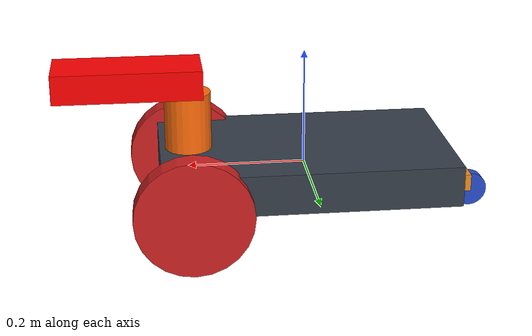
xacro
<?xml version="1.0"?>
<robot xmlns:xacro="http://www.ros.org/wiki/xacro" name="robot_xacro">
  <xacro:include filename="$(find exp_assignment2)/urdf/robot.gazebo"/>

  <xacro:property name="length_wheel" value="0.04" />
  <xacro:property name="radius_wheel" value="0.1" />

  <xacro:macro name="default_inertial" params="mass">
    <inertial>
      <mass value="${mass}" />
      <origin rpy="0 1.5707 1.5707" xyz="0 0 0"/>
      <inertia ixx="0.000526666666667" ixy="0" ixz="0" iyy="0.000526666666667" iyz="0" izz="0.001"/>
    </inertial>
  </xacro:macro>

  <xacro:macro name="cuboid_inertial" params="mass length width height">
    <inertial>
      <mass value="${mass}"/>
      <inertia ixx="${0.83*mass*(width+height)}" ixy="0.0" ixz="0.0" iyy="${0.83*mass*(length+height)}" iyz="0.0" izz="${0.83*mass*(width+length)}" />
    </inertial>
  </xacro:macro>

  <xacro:macro name="wheel_geometry">
    <geometry>
      <cylinder length="${length_wheel}" radius="${radius_wheel}"/>
    </geometry>
  </xacro:macro>

  <material name="black">
    <color rgba="0.0 0.0 0.0 1.0"/>
  </material>
  <material name="blue">
    <color rgba="0.203125 0.23828125 0.28515625 1.0"/>
  </material>
  <material name="green">
    <color rgba="0.0 0.8 0.0 1.0"/>
  </material>
  <material name="grey">
    <color rgba="0.2 0.2 0.2 1.0"/>
  </material>
  <material name="orange">
    <color rgba="1.0 0.423529411765 0.0392156862745 1.0"/>
  </material>
  <material name="brown">
    <color rgba="0.870588235294 0.811764705882 0.764705882353 1.0"/>
  </material>
  <material name="red">
    <color rgba="0.80078125 0.12890625 0.1328125 1.0"/>
  </material>
  <material name="white">
    <color rgba="1.0 1.0 1.0 1.0"/>
  </material>

  <link name="link_chassis">
    <!-- pose and inertial -->
    <pose>0 0 0.1 0 0 0</pose>
    <xacro:cuboid_inertial mass="10" length="0.5" width="0.3" height="0.07"/>
    <!-- body -->
    <collision name="collision_chassis">
      <geometry>
        <box size="0.5 0.3 0.07"/>
      </geometry>
    </collision>
    <visual>
      <origin rpy="0 0 0" xyz="0 0 0"/>
      <geometry>
        <box size="0.5 0.3 0.07"/>
      </geometry>
      <material name="blue"/>
    </visual>
  </link>

  <link name="link_right_wheel">
    <xacro:default_inertial mass="0.2"/>
    <collision name="link_right_wheel_collision">
      <origin rpy="0 1.5707 1.5707" xyz="0 0 0"/>
      <xacro:wheel_geometry />
    </collision>
    <visual name="link_right_wheel_visual">
      <origin rpy="0 1.5707 1.5707" xyz="0 0 0"/>
      <xacro:wheel_geometry />
      <material name="red"/>
    </visual>
  </link>

  <link name="link_left_wheel">
    <xacro:default_inertial mass="0.2"/>
    <collision name="link_left_wheel_collision">
      <origin rpy="0 1.5707 1.5707" xyz="0 0 0"/>
      <xacro:wheel_geometry />
    </collision>
    <visual name="link_left_wheel_visual">
      <origin rpy="0 1.5707 1.5707" xyz="0 0 0"/>
      <xacro:wheel_geometry />
      <material name="red"/>
    </visual>
  </link>

  <joint name="joint_right_wheel" type="continuous">
    <origin rpy="0 0 0" xyz="0.2 0.15 -0.03"/>
    <child link="link_right_wheel"/>
    <parent link="link_chassis"/>
    <axis rpy="0 0 0" xyz="0 1 0"/>
    <limit effort="10000" velocity="1000"/>
    <joint_properties damping="1.0" friction="1.0"/>
  </joint>

  <joint name="joint_left_wheel" type="continuous">
    <origin rpy="0 0 0" xyz="0.2 -0.15 -0.03"/>
    <child link="link_left_wheel"/>
    <parent link="link_chassis"/>
    <axis rpy="0 0 0" xyz="0 1 0"/>
    <limit effort="10000" velocity="1000"/>
    <joint_properties damping="1.0" friction="1.0"/>
  </joint>

  <link name="neck_link">
    <collision>
      <origin xyz="0 0 0.05" rpy="0 0 0"/>
      <geometry>
        <cylinder radius="0.04" length="0.1"/>
      </geometry>
    </collision>
    <visual>
      <origin xyz="0 0 0.05" rpy="0 0 0"/>
      <geometry>
        <cylinder radius="0.04" length="0.1"/>
      </geometry>
      <material name="orange"/>
    </visual>
    <inertial>
      <mass value="0.5" />
      <origin xyz="0 0 0" rpy="0 0 0"/>
      <inertia ixx="1e-6" ixy="0" ixz="0" iyy="1e-6" iyz="0" izz="1e-6" />
    </inertial>
  </link>

  <joint name="neck_joint" type="fixed">
    <axis xyz="0 1 0" />
    <origin xyz="0.2 0 0.035" rpy="0 0 0"/>
    <parent link="link_chassis"/>
    <child link="neck_link"/>
  </joint>

  <link name="camera_link">
    <collision>
      <origin xyz="0 0 0.025" rpy="0 0 0"/>
      <geometry>
        <box size="0.05 0.05 0.05"/>
      </geometry>
    </collision>
    <visual>
      <origin xyz="0.1 0 0.025" rpy="0 0 0"/>
      <geometry>
        <box size="0.25 0.1 0.05"/>
      </geometry>
      <material name="red">
        <color rgba="1 0 0 1"/>
      </material>
    </visual>
    <xacro:cuboid_inertial mass="0.3" length="0.25" width="0.1" height="0.05"/>
  </link>

  <joint name="camera_joint" type="revolute">
    <axis xyz="0 0 1" />
    <origin xyz="0 0 0.1" rpy="0 0 0"/>
    <parent link="neck_link"/>
    <child link="camera_link"/>
    <limit effort="10000" velocity="1000" lower="${-pi/4}" upper="${pi/4}"/>
    <joint_properties damping="1.0" friction="1.0"/>
  </joint>

  <transmission name="camera_joint_trans">
    <type>transmission_interface/SimpleTransmission</type>
    <joint name="camera_joint">
      <hardwareInterface>EffortJointInterface</hardwareInterface>
    </joint>
    <actuator name="motor1">
      <hardwareInterface>EffortJointInterface</hardwareInterface>
      <mechanicalInterface>1</mechanicalInterface>
    </actuator>
  </transmission>

  <link name="link_castor_axis">
    <!-- pose and inertial -->
    <pose>0 0 0.1 0 0 0</pose>
    <xacro:cuboid_inertial mass="0.2" length="0.05" width="0.035" height="0.03"/>
    <!-- body -->
    <collision name="collision_chassis">
      <origin rpy="0 0 0" xyz="-0.025 0 0"/>
      <geometry>
        <box size="0.05 0.035 0.03"/>
      </geometry>
    </collision>
    <visual>
      <origin rpy="0 0 0" xyz="-0.025 0 0"/>
      <geometry>
        <box size="0.05 0.035 0.03"/>
      </geometry>
    </visual>
  </link>

  <link name="link_castor_wheel">
    <xacro:default_inertial mass="0.2"/>
    <collision name="link_castor_wheel_collision">
      <origin rpy="0 1.5707 1.5707" xyz="0 0 0"/>
      <geometry>
        <cylinder length="0.02" radius="0.03"/>
      </geometry>
    </collision>
    <visual name="link_castor_wheel_visual">
      <origin rpy="0 1.5707 1.5707" xyz="0 0 0"/>
      <geometry>
        <cylinder length="0.02" radius="0.03"/>
      </geometry>
    </visual>
  </link>

  <joint name="joint_castor_wheel" type="continuous">
    <origin rpy="0 0 0" xyz="-0.05 0 -0.015"/>
    <child link="link_castor_wheel"/>
    <parent link="link_castor_axis"/>
    <axis rpy="0 0 0" xyz="0 1 0"/>
    <limit effort="10000" velocity="1000"/>
    <joint_properties damping="1.0" friction="1.0"/>
  </joint>

  <joint name="joint_castor_axis" type="continuous">
    <origin rpy="0 0 0" xyz="-0.25 0 -0.05"/>
    <child link="link_castor_axis"/>
    <parent link="link_chassis"/>
    <axis rpy="0 0 0" xyz="0 0 1"/>
    <limit effort="10000" velocity="1000"/>
    <joint_properties damping="1.0" friction="1.0"/>
  </joint>

</robot>
